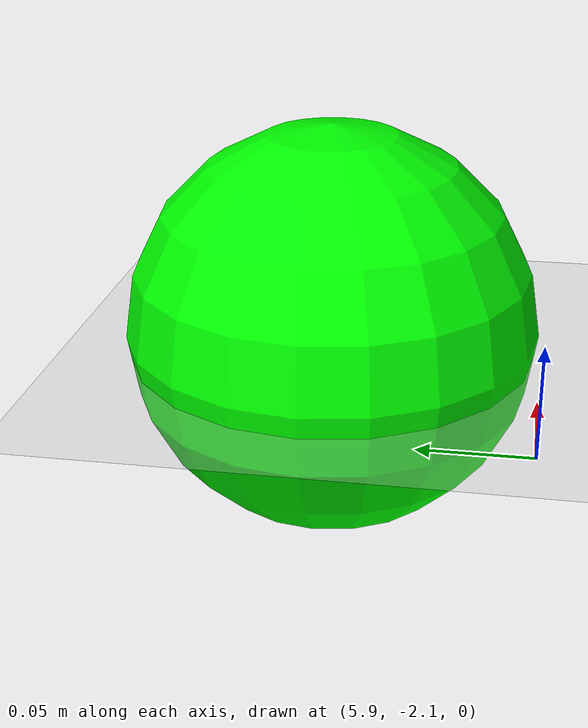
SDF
<?xml version="1.0" ?>
<sdf version="1.6">
  <world name="simple_world">
    <!-- 太陽光 -->
    <include>
      <uri>model://sun</uri>
    </include>

    <!-- 地面 -->
    <include>
      <uri>model://ground_plane</uri>
    </include>

    <!-- カメラ設定（真上からの俯瞰視点） -->
    <gui fullscreen='0'>
      <camera name='user_camera'>
        <pose>0.0 0.0 12.0 0 1.5708 0</pose>
        <view_controller>orbit</view_controller>
      </camera>
    </gui>

    <!-- ゴール地点の可視化（緑の球） -->
    <model name='goal_marker'>
      <pose>6.0 -2.0 0.01 0 0 0</pose>
      <static>true</static>
      <link name='link'>
        <visual name='center'>
          <geometry>
            <sphere><radius>0.1</radius></sphere>
          </geometry>
          <material>
            <ambient>0 1 0 1</ambient>
            <diffuse>0 1 0 1</diffuse>
            <emissive>0 0.3 0 1</emissive>
          </material>
        </visual>
      </link>
    </model>

    <!-- 物理設定 -->
    <physics name='default_physics' default='0' type='ode'>
      <gravity>0 0 -9.8066</gravity>
      <ode>
        <solver>
          <type>quick</type>
          <iters>50</iters>
          <sor>1.0</sor>
        </solver>
        <constraints>
          <cfm>0</cfm>
          <erp>0.2</erp>
          <contact_max_correcting_vel>100</contact_max_correcting_vel>
          <contact_surface_layer>0.001</contact_surface_layer>
        </constraints>
      </ode>
      <max_step_size>0.004</max_step_size>
      <real_time_factor>1</real_time_factor>
      <real_time_update_rate>250</real_time_update_rate>
    </physics>
  </world>
</sdf>
